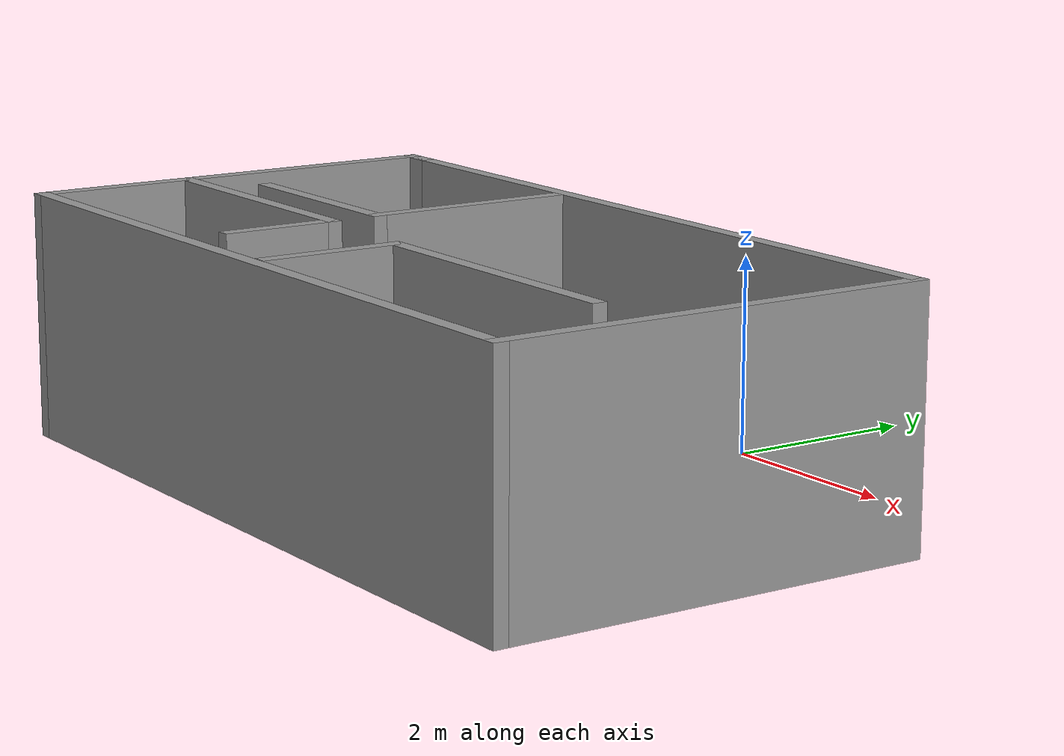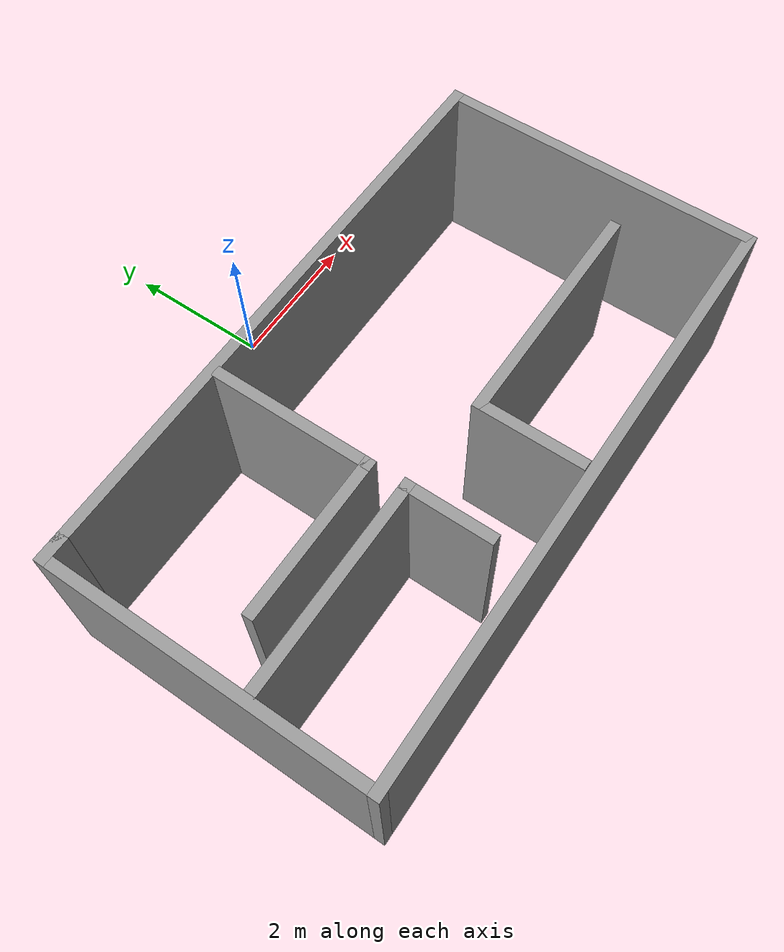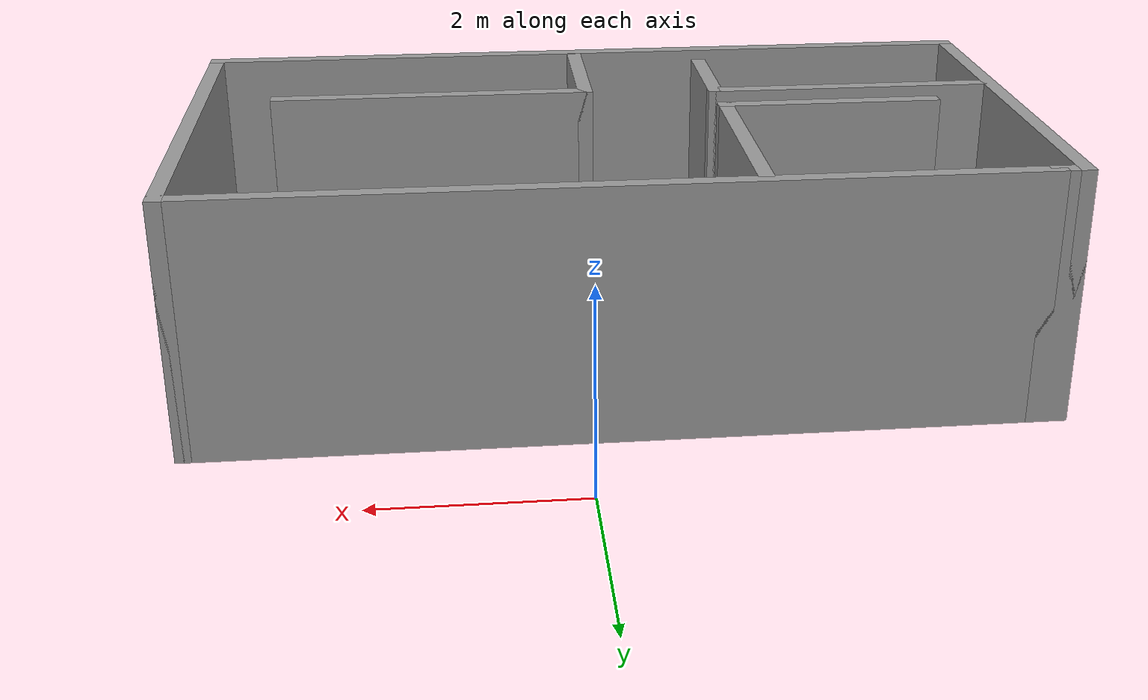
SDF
<?xml version='1.0'?>
<sdf version='1.7'>
  <model name='room'>
    <pose>-0.42 -2.7375 0 0 -0 0</pose>
    <link name='Wall_0'>
      <collision name='Wall_0_Collision'>
        <geometry>
          <box>
            <size>8 0.15 2.5</size>
          </box>
        </geometry>
        <pose>0 0 1.25 0 -0 0</pose>
      </collision>
      <visual name='Wall_0_Visual'>
        <pose>0 0 1.25 0 -0 0</pose>
        <geometry>
          <box>
            <size>8 0.15 2.5</size>
          </box>
        </geometry>
        <material>
          <script>
            <uri>file://media/materials/scripts/gazebo.material</uri>
            <name>Gazebo/Grey</name>
          </script>
          <ambient>1 1 1 1</ambient>
        </material>
        <meta>
          <layer>0</layer>
        </meta>
      </visual>
      <pose>0.125 1.6875 0 0 -0 0</pose>
    </link>
    <link name='Wall_10'>
      <collision name='Wall_10_Collision'>
        <geometry>
          <box>
            <size>3 0.15 2.5</size>
          </box>
        </geometry>
        <pose>0 0 1.25 0 -0 0</pose>
      </collision>
      <visual name='Wall_10_Visual'>
        <pose>0 0 1.25 0 -0 0</pose>
        <geometry>
          <box>
            <size>3 0.15 2.5</size>
          </box>
        </geometry>
        <material>
          <script>
            <uri>file://media/materials/scripts/gazebo.material</uri>
            <name>Gazebo/Grey</name>
          </script>
          <ambient>1 1 1 1</ambient>
        </material>
        <meta>
          <layer>0</layer>
        </meta>
      </visual>
      <pose>-2.58752 -1.04391 0 0 -0 0</pose>
    </link>
    <link name='Wall_11'>
      <collision name='Wall_11_Collision'>
        <geometry>
          <box>
            <size>1.25 0.15 2.5</size>
          </box>
        </geometry>
        <pose>0 0 1.25 0 -0 0</pose>
      </collision>
      <visual name='Wall_11_Visual'>
        <pose>0 0 1.25 0 -0 0</pose>
        <geometry>
          <box>
            <size>1.25 0.15 2.5</size>
          </box>
        </geometry>
        <material>
          <script>
            <uri>file://media/materials/scripts/gazebo.material</uri>
            <name>Gazebo/Grey</name>
          </script>
          <ambient>1 1 1 1</ambient>
        </material>
        <meta>
          <layer>0</layer>
        </meta>
      </visual>
      <pose>-1.16253 -1.59391 0 0 -0 -1.5708</pose>
    </link>
    <link name='Wall_14'>
      <collision name='Wall_14_Collision'>
        <geometry>
          <box>
            <size>1.5 0.15 2.5</size>
          </box>
        </geometry>
        <pose>0 0 1.25 0 -0 0</pose>
      </collision>
      <visual name='Wall_14_Visual'>
        <pose>0 0 1.25 0 -0 0</pose>
        <geometry>
          <box>
            <size>1.5 0.15 2.5</size>
          </box>
        </geometry>
        <material>
          <script>
            <uri>file://media/materials/scripts/gazebo.material</uri>
            <name>Gazebo/Grey</name>
          </script>
          <ambient>1 1 1 1</ambient>
        </material>
        <meta>
          <layer>0</layer>
        </meta>
      </visual>
      <pose>0.169881 -1.82895 0 0 -0 1.5708</pose>
    </link>
    <link name='Wall_15'>
      <collision name='Wall_15_Collision'>
        <geometry>
          <box>
            <size>3.25 0.15 2.5</size>
          </box>
        </geometry>
        <pose>0 0 1.25 0 -0 0</pose>
      </collision>
      <visual name='Wall_15_Visual'>
        <pose>0 0 1.25 0 -0 0</pose>
        <geometry>
          <box>
            <size>3.25 0.15 2.5</size>
          </box>
        </geometry>
        <material>
          <script>
            <uri>file://media/materials/scripts/gazebo.material</uri>
            <name>Gazebo/Grey</name>
          </script>
          <ambient>1 1 1 1</ambient>
        </material>
        <meta>
          <layer>0</layer>
        </meta>
      </visual>
      <pose>1.71988 -1.15395 0 0 -0 0</pose>
    </link>
    <link name='Wall_2'>
      <collision name='Wall_2_Collision'>
        <geometry>
          <box>
            <size>4.5 0.15 2.5</size>
          </box>
        </geometry>
        <pose>0 0 1.25 0 -0 0</pose>
      </collision>
      <visual name='Wall_2_Visual'>
        <pose>0 0 1.25 0 -0 0</pose>
        <geometry>
          <box>
            <size>4.5 0.15 2.5</size>
          </box>
        </geometry>
        <material>
          <script>
            <uri>file://media/materials/scripts/gazebo.material</uri>
            <name>Gazebo/Grey</name>
          </script>
          <ambient>1 1 1 1</ambient>
        </material>
        <meta>
          <layer>0</layer>
        </meta>
      </visual>
      <pose>4.05 -0.4875 0 0 -0 -1.5708</pose>
    </link>
    <link name='Wall_3'>
      <collision name='Wall_3_Collision'>
        <geometry>
          <box>
            <size>8.25 0.15 2.5</size>
          </box>
        </geometry>
        <pose>0 0 1.25 0 -0 0</pose>
      </collision>
      <visual name='Wall_3_Visual'>
        <pose>0 0 1.25 0 -0 0</pose>
        <geometry>
          <box>
            <size>8.25 0.15 2.5</size>
          </box>
        </geometry>
        <material>
          <script>
            <uri>file://media/materials/scripts/gazebo.material</uri>
            <name>Gazebo/Grey</name>
          </script>
          <ambient>1 1 1 1</ambient>
        </material>
        <meta>
          <layer>0</layer>
        </meta>
      </visual>
      <pose>-0 -2.6625 0 0 -0 3.14159</pose>
    </link>
    <link name='Wall_4'>
      <collision name='Wall_4_Collision'>
        <geometry>
          <box>
            <size>4.5 0.15 2.5</size>
          </box>
        </geometry>
        <pose>0 0 1.25 0 -0 0</pose>
      </collision>
      <visual name='Wall_4_Visual'>
        <pose>0 0 1.25 0 -0 0</pose>
        <geometry>
          <box>
            <size>4.5 0.15 2.5</size>
          </box>
        </geometry>
        <material>
          <script>
            <uri>file://media/materials/scripts/gazebo.material</uri>
            <name>Gazebo/Grey</name>
          </script>
          <ambient>1 1 1 1</ambient>
        </material>
        <meta>
          <layer>0</layer>
        </meta>
      </visual>
      <pose>-4.05 -0.4875 0 0 -0 1.5708</pose>
    </link>
    <link name='Wall_5'>
      <collision name='Wall_5_Collision'>
        <geometry>
          <box>
            <size>0.4 0.15 2.5</size>
          </box>
        </geometry>
        <pose>0 0 1.25 0 -0 0</pose>
      </collision>
      <visual name='Wall_5_Visual'>
        <pose>0 0 1.25 0 -0 0</pose>
        <geometry>
          <box>
            <size>0.4 0.15 2.5</size>
          </box>
        </geometry>
        <material>
          <script>
            <uri>file://media/materials/scripts/gazebo.material</uri>
            <name>Gazebo/Grey</name>
          </script>
          <ambient>1 1 1 1</ambient>
        </material>
        <meta>
          <layer>0</layer>
        </meta>
      </visual>
      <pose>-3.925 1.6875 0 0 -0 0</pose>
    </link>
    <link name='Wall_7'>
      <collision name='Wall_7_Collision'>
        <geometry>
          <box>
            <size>2.25 0.15 2.5</size>
          </box>
        </geometry>
        <pose>0 0 1.25 0 -0 0</pose>
      </collision>
      <visual name='Wall_7_Visual'>
        <pose>0 0 1.25 0 -0 0</pose>
        <geometry>
          <box>
            <size>2.25 0.15 2.5</size>
          </box>
        </geometry>
        <material>
          <script>
            <uri>file://media/materials/scripts/gazebo.material</uri>
            <name>Gazebo/Grey</name>
          </script>
          <ambient>1 1 1 1</ambient>
        </material>
        <meta>
          <layer>0</layer>
        </meta>
      </visual>
      <pose>-1.1837 0.521993 0 0 -0 -1.5708</pose>
    </link>
    <link name='Wall_8'>
      <collision name='Wall_8_Collision'>
        <geometry>
          <box>
            <size>2.25 0.15 2.5</size>
          </box>
        </geometry>
        <pose>0 0 1.25 0 -0 0</pose>
      </collision>
      <visual name='Wall_8_Visual'>
        <pose>0 0 1.25 0 -0 0</pose>
        <geometry>
          <box>
            <size>2.25 0.15 2.5</size>
          </box>
        </geometry>
        <material>
          <script>
            <uri>file://media/materials/scripts/gazebo.material</uri>
            <name>Gazebo/Grey</name>
          </script>
          <ambient>1 1 1 1</ambient>
        </material>
        <meta>
          <layer>0</layer>
        </meta>
      </visual>
      <pose>-2.2337 -0.528007 0 0 -0 3.14159</pose>
    </link>
    <static>1</static>
  </model>
</sdf>
